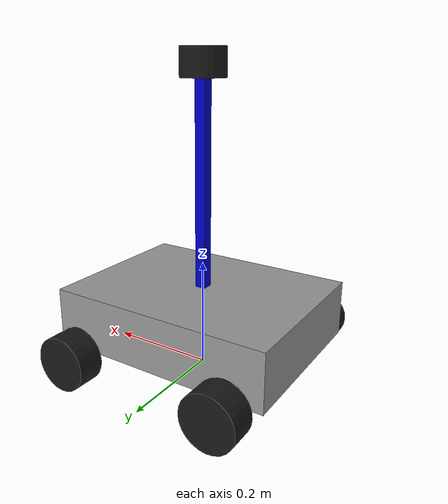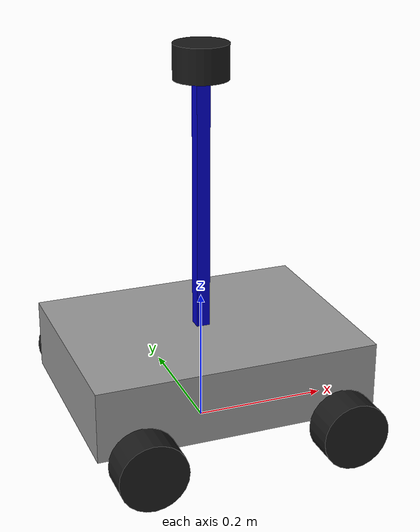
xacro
<?xml version="1.0"?>
<robot name="mecanum_robot" xmlns:xacro="http://www.ros.org/wiki/xacro">

  <!-- Parameters / Constants -->
  <xacro:property name="base_length" value="0.42"/>
  <xacro:property name="base_width"  value="0.315"/>
  <xacro:property name="base_height" value="0.105"/>
  <xacro:property name="base_mass"   value="5.0"/>

  <xacro:property name="wheel_radius" value="0.05"/>
  <xacro:property name="wheel_width"  value="0.05"/>
  <xacro:property name="wheel_mass"   value="0.5"/>

  <xacro:property name="track_width"  value="0.395"/> <!-- lateral separation -->
  <xacro:property name="wheelbase"    value="0.30"/>  <!-- longitudinal separation -->

  <xacro:property name="tower_x"      value="0.02"/>
  <xacro:property name="tower_y"      value="0.02"/>
  <xacro:property name="tower_z"      value="0.395"/>
  <xacro:property name="tower_mass"   value="1.0"/>

  <!-- Derived positions -->
  <xacro:property name="half_track"   value="${track_width/2.0}"/>
  <xacro:property name="half_wheelbase" value="${wheelbase/2.0}"/>

  <!-- Base_link center is at wheel_radius + base_height/2 above ground -->
  <xacro:property name="base_center_z" value="${wheel_radius + base_height/2.0}"/>

  <!-- Top of chassis box above base_link center -->
  <xacro:property name="chassis_top_offset_z" value="${base_height/2.0}"/>
  <!-- Tower center above base_link center: box top + tower_z/2 -->
  <xacro:property name="tower_center_z" value="${chassis_top_offset_z + tower_z/2.0}"/>

  <!-- Materials             -->
  <material name="gray">
    <color rgba="0.6 0.6 0.6 1.0"/>
  </material>
  <material name="black">
    <color rgba="0.1 0.1 0.1 1.0"/>
  </material>
  <material name="blue">
    <color rgba="0.0 0.0 0.8 1.0"/>
  </material>

  <!-- Root link             -->
  <link name="base_footprint">
    <!-- Massless frame on the ground -->
    <inertial>
      <origin xyz="0 0 0" rpy="0 0 0"/>
      <mass value="0.0001"/>
      <inertia ixx="1e-6" ixy="0.0" ixz="0.0"
               iyy="1e-6" iyz="0.0"
               izz="1e-6"/>
    </inertial>
  </link>

  <!-- Base chassis (base_link) -->
  <link name="base_link">
    <inertial>
      <origin xyz="0 0 0" rpy="0 0 0"/>
      <!-- Box inertia, m=5, 0.42 x 0.315 x 0.105 -->
      <mass value="${base_mass}"/>
      <inertia ixx="0.04594" ixy="0.0" ixz="0.0"
               iyy="0.07809" iyz="0.0"
               izz="0.11484"/>
    </inertial>

    <visual>
      <origin xyz="0 0 0" rpy="0 0 0"/>
      <geometry>
        <box size="${base_length} ${base_width} ${base_height}"/>
      </geometry>
      <material name="gray"/>
    </visual>

    <collision>
      <origin xyz="0 0 0" rpy="0 0 0"/>
      <geometry>
        <box size="${base_length} ${base_width} ${base_height}"/>
      </geometry>
    </collision>
  </link>

  <!-- base_footprint -> base_link (fixed, raises chassis above ground) -->
  <joint name="base_footprint_to_base_link" type="fixed">
    <parent link="base_footprint"/>
    <child  link="base_link"/>
    <origin xyz="0 0 ${base_center_z}" rpy="0 0 0"/>
  </joint>

  <!-- Vertical tower_link   -->
  <link name="tower_link">
    <inertial>
      <origin xyz="0 0 0" rpy="0 0 0"/>
      <mass value="${tower_mass}"/>
      <!-- Box inertia, 0.02 x 0.02 x 0.395, m=1 -->
      <inertia ixx="0.01304" ixy="0.0" ixz="0.0"
               iyy="0.01304" iyz="0.0"
               izz="0.000067"/>
    </inertial>

    <visual>
      <origin xyz="0 0 0" rpy="0 0 0"/>
      <geometry>
        <box size="${tower_x} ${tower_y} ${tower_z}"/>
      </geometry>
      <material name="blue"/>
    </visual>

    <collision>
      <origin xyz="0 0 0" rpy="0 0 0"/>
      <geometry>
        <box size="${tower_x} ${tower_y} ${tower_z}"/>
      </geometry>
    </collision>
  </link>

  <!-- Mounted on top center of chassis box -->
  <joint name="base_to_tower_joint" type="fixed">
    <parent link="base_link"/>
    <child  link="tower_link"/>
    <origin xyz="0 0 ${tower_center_z}" rpy="0 0 0"/>
  </joint>

  <!-- Sensor links          -->

  <!-- IMU -->
  <link name="imu_link">
    <inertial>
      <origin xyz="0 0 0" rpy="0 0 0"/>
      <mass value="0.05"/>
      <inertia ixx="1e-5" ixy="0.0" ixz="0.0"
               iyy="1e-5" iyz="0.0"
               izz="1e-5"/>
    </inertial>

    <visual>
      <origin xyz="0 0 0" rpy="0 0 0"/>
      <geometry>
        <box size="0.03 0.03 0.01"/>
      </geometry>
      <material name="black"/>
    </visual>

    <collision>
      <origin xyz="0 0 0" rpy="0 0 0"/>
      <geometry>
        <box size="0.03 0.03 0.01"/>
      </geometry>
    </collision>
  </link>

  <joint name="imu_joint" type="fixed">
    <parent link="base_link"/>
    <!-- Offset from base_link center as specified -->
    <child  link="imu_link"/>
    <origin xyz="0.035 0.04 0.03" rpy="0 0 0"/>
  </joint>

  <!-- LiDAR at very top of tower -->
  <link name="lidar_link">
    <inertial>
      <origin xyz="0 0 0" rpy="0 0 0"/>
      <mass value="0.2"/>
      <inertia ixx="1e-4" ixy="0.0" ixz="0.0"
               iyy="1e-4" iyz="0.0"
               izz="1e-4"/>
    </inertial>

    <visual>
      <origin xyz="0 0 0" rpy="0 0 0"/>
      <geometry>
        <cylinder length="0.05" radius="0.04"/>
      </geometry>
      <material name="black"/>
    </visual>

    <collision>
      <origin xyz="0 0 0" rpy="0 0 0"/>
      <geometry>
        <cylinder length="0.05" radius="0.04"/>
      </geometry>
    </collision>
  </link>

  <joint name="lidar_joint" type="fixed">
    <parent link="tower_link"/>
    <!-- From tower center to its top: tower_z/2 -->
    <child  link="lidar_link"/>
    <origin xyz="0 0 ${tower_z/2.0}" rpy="0 0 0"/>
  </joint>

  <!-- Standard nav / health-check frame name (alias of lidar_link for TF chain) -->
  <link name="laser">
    <inertial>
      <origin xyz="0 0 0" rpy="0 0 0"/>
      <mass value="0.001"/>
      <inertia ixx="1e-9" ixy="0.0" ixz="0.0" iyy="1e-9" iyz="0.0" izz="1e-9"/>
    </inertial>
  </link>
  <joint name="lidar_to_laser" type="fixed">
    <parent link="lidar_link"/>
    <child link="laser"/>
    <origin xyz="0 0 0" rpy="0 0 0"/>
  </joint>

  <!-- Wheel macro           -->
  <xacro:macro name="mecanum_wheel" params="prefix parent x y z roll pitch yaw">
    <link name="${prefix}_wheel_link">
      <inertial>
        <origin xyz="0 0 0" rpy="0 0 0"/>
        <mass value="${wheel_mass}"/>
        <!-- Cylinder inertia, axis along Y -->
        <inertia ixx="0.000417" ixy="0.0" ixz="0.0"
                 iyy="0.000625" iyz="0.0"
                 izz="0.000417"/>
      </inertial>

      <visual>
        <!-- URDF cylinders are Z-axis by default; rotate to match wheel joint axis (Y) -->
        <origin xyz="0 0 0" rpy="1.5708 0 0"/>
        <geometry>
          <cylinder length="${wheel_width}" radius="${wheel_radius}"/>
        </geometry>
        <material name="black"/>
      </visual>

      <collision>
        <origin xyz="0 0 0" rpy="1.5708 0 0"/>
        <geometry>
          <cylinder length="${wheel_width}" radius="${wheel_radius}"/>
        </geometry>
      </collision>
    </link>

    <!-- Revolute joint; rotation about Y (forward X, left Y, up Z) -->
    <joint name="${prefix}_wheel_joint" type="continuous">
      <parent link="${parent}"/>
      <child  link="${prefix}_wheel_link"/>
      <origin xyz="${x} ${y} ${z}" rpy="${roll} ${pitch} ${yaw}"/>
      <axis xyz="0 1 0"/>
      <limit effort="50.0" velocity="20.0"/>
      <dynamics friction="0.0" damping="0.0"/>
    </joint>

    <!-- Gazebo friction for wheel surfaces -->
    <gazebo reference="${prefix}_wheel_link">
      <mu1>0.1</mu1>
      <mu2>0.1</mu2>
      <kp>1000000.0</kp>
      <kd>1.0</kd>
      <fdir1>1 0 0</fdir1>
    </gazebo>
  </xacro:macro>

  <!-- Four Mecanum wheels   -->
  <xacro:property name="wheel_center_z_in_base" value="${wheel_radius - base_center_z}"/>

  <!-- Front left (X+, Y+) -->
  <xacro:mecanum_wheel prefix="front_left"
                       parent="base_link"
                       x="${half_wheelbase}"
                       y="${half_track}"
                       z="${wheel_center_z_in_base}"
                       roll="0" pitch="0" yaw="0"/>

  <!-- Front right (X+, Y-) -->
  <xacro:mecanum_wheel prefix="front_right"
                       parent="base_link"
                       x="${half_wheelbase}"
                       y="-${half_track}"
                       z="${wheel_center_z_in_base}"
                       roll="0" pitch="0" yaw="0"/>

  <!-- Rear left (X-, Y+) -->
  <xacro:mecanum_wheel prefix="rear_left"
                       parent="base_link"
                       x="-${half_wheelbase}"
                       y="${half_track}"
                       z="${wheel_center_z_in_base}"
                       roll="0" pitch="0" yaw="0"/>

  <!-- Rear right (X-, Y-) -->
  <xacro:mecanum_wheel prefix="rear_right"
                       parent="base_link"
                       x="-${half_wheelbase}"
                       y="-${half_track}"
                       z="${wheel_center_z_in_base}"
                       roll="0" pitch="0" yaw="0"/>

  <!-- Transmissions (ROS1)  -->

  <transmission name="front_left_wheel_transmission">
    <type>transmission_interface/SimpleTransmission</type>
    <joint name="front_left_wheel_joint">
      <hardwareInterface>hardware_interface/VelocityJointInterface</hardwareInterface>
    </joint>
    <actuator name="front_left_wheel_motor">
      <hardwareInterface>hardware_interface/VelocityJointInterface</hardwareInterface>
      <mechanicalReduction>1.0</mechanicalReduction>
    </actuator>
  </transmission>

  <transmission name="front_right_wheel_transmission">
    <type>transmission_interface/SimpleTransmission</type>
    <joint name="front_right_wheel_joint">
      <hardwareInterface>hardware_interface/VelocityJointInterface</hardwareInterface>
    </joint>
    <actuator name="front_right_wheel_motor">
      <hardwareInterface>hardware_interface/VelocityJointInterface</hardwareInterface>
      <mechanicalReduction>1.0</mechanicalReduction>
    </actuator>
  </transmission>

  <transmission name="rear_left_wheel_transmission">
    <type>transmission_interface/SimpleTransmission</type>
    <joint name="rear_left_wheel_joint">
      <hardwareInterface>hardware_interface/VelocityJointInterface</hardwareInterface>
    </joint>
    <actuator name="rear_left_wheel_motor">
      <hardwareInterface>hardware_interface/VelocityJointInterface</hardwareInterface>
      <mechanicalReduction>1.0</mechanicalReduction>
    </actuator>
  </transmission>

  <transmission name="rear_right_wheel_transmission">
    <type>transmission_interface/SimpleTransmission</type>
    <joint name="rear_right_wheel_joint">
      <hardwareInterface>hardware_interface/VelocityJointInterface</hardwareInterface>
    </joint>
    <actuator name="rear_right_wheel_motor">
      <hardwareInterface>hardware_interface/VelocityJointInterface</hardwareInterface>
      <mechanicalReduction>1.0</mechanicalReduction>
    </actuator>
  </transmission>

  <!-- Gazebo specifics      -->

  <!-- Gazebo visual plugin for base_link (color, etc.) -->
  <gazebo reference="base_link">
    <material>Gazebo/Gray</material>
  </gazebo>

  <!-- Planar move plugin (ROS 1) -->
  <gazebo>
    <plugin name="planar_move_plugin" filename="libgazebo_ros_planar_move.so">
      <robotNamespace>/</robotNamespace>
      <!-- Use base_footprint so TF is odom -> base_footprint -> base_link (nav standard) -->
      <bodyName>base_footprint</bodyName>

      <commandTopic>cmd_vel</commandTopic>
      <odometryTopic>odom</odometryTopic>
      <odometryFrame>odom</odometryFrame>
      <odometryRate>50.0</odometryRate>

      <xVelocityP>10.0</xVelocityP>
      <yVelocityP>10.0</yVelocityP>
      <yawVelocityP>10.0</yawVelocityP>
    </plugin>
  </gazebo>

</robot>
